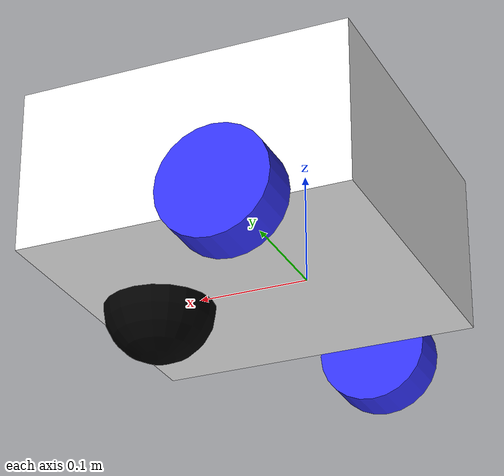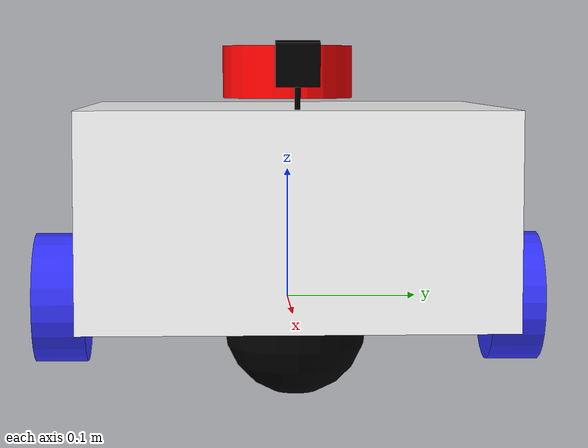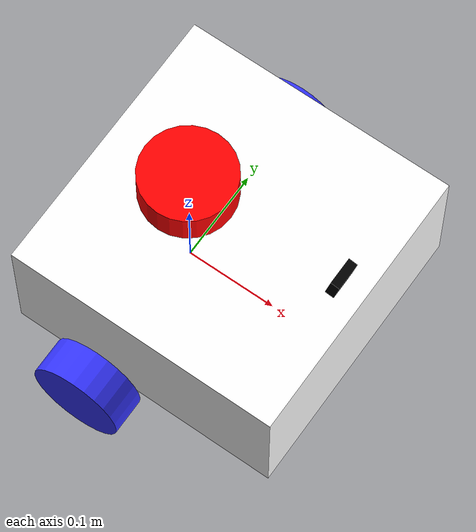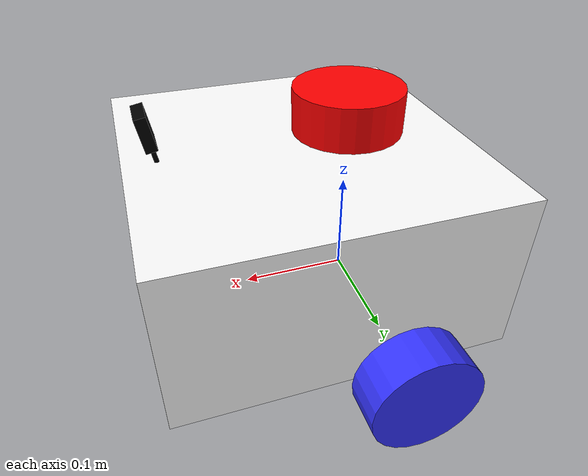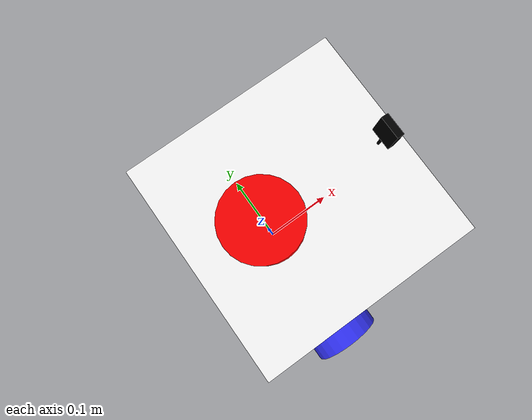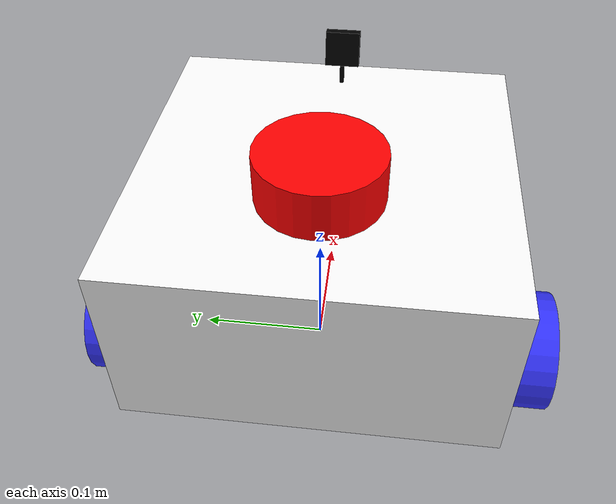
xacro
<?xml version="1.0"?>
<robot xmlns:xacro="http://www.ros.org/wiki/xacro"  name="robot">

    <xacro:include filename="robot_core.xacro" />
    <xacro:include filename="lidar.xacro"/>
    <xacro:include filename="camera.xacro"/>
    <xacro:include filename="ros2_control.xacro"/>

</robot>

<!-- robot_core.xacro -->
<robot xmlns:xacro="http://www.ros.org/wiki/xacro" name="robot">

    <xacro:include filename="inertial_macros.xacro"/>

    <material name="white">
        <color rgba="1 1 1 1" />
    </material>

    <material name="orange">
        <color rgba="1 0.3 0.1 1"/>
    </material>

    <material name="blue">
        <color rgba="0.2 0.2 1 1"/>
    </material>

    <material name="black">
        <color rgba="0 0 0 1"/>
    </material>

    <material name="red">
        <color rgba="1 0 0 1"/>
    </material>

    <!-- BASE LINK -->

    <link name="base_link">

    </link>

    <!-- CHASSIS LINK -->

    <joint name="chassis_joint" type="fixed">
        <parent link="base_link"/>
        <child link="chassis"/>
        <origin xyz="-0.1 0 0"/>
    </joint>

    <link name="chassis">
        <visual>
            <origin xyz="0.15 0 0.075"/>
            <geometry>
                <box size="0.3 0.3 0.15"/>
            </geometry>
            <material name="white"/>
        </visual>
        <collision>
            <origin xyz="0.15 0 0.075"/>
            <geometry>
                <box size="0.3 0.3 0.15"/>
            </geometry>
        </collision>
        <xacro:inertial_box mass="0.5" x="0.3" y="0.3" z="0.15">
            <origin xyz="0.15 0 0.075" rpy="0 0 0"/>
        </xacro:inertial_box>
    </link>

    <gazebo reference="chassis">
        <material>
            Gazebo/White
        </material>
    </gazebo>

    <!-- LEFT WHEEL LINK -->

    <joint name="left_wheel_joint" type="continuous">
        <parent link="base_link"/>
        <child link="left_wheel"/>
        <origin xyz="0 0.175 0" rpy="-${pi/2} 0 0" />
        <axis xyz="0 0 1"/>
    </joint>

    <link name="left_wheel">
        <visual>
            <geometry>
                <cylinder radius="0.05" length="0.04"/>
            </geometry>
            <material name="blue"/>
        </visual>
        <collision>
            <geometry>
                <cylinder radius="0.05" length="0.04"/>
            </geometry>
        </collision>
        <xacro:inertial_cylinder mass="0.1" length="0.04" radius="0.05">
            <origin xyz="0 0 0" rpy="0 0 0"/>
        </xacro:inertial_cylinder>
    </link>

    <gazebo reference="left_wheel">
        <material>
            Gazebo/Blue
        </material>
    </gazebo>

    <!-- RIGHT WHEEL LINK -->

    <joint name="right_wheel_joint" type="continuous">
        <parent link="base_link"/>
        <child link="right_wheel"/>
        <origin xyz="0 -0.175 0" rpy="${pi/2} 0 0" />
        <axis xyz="0 0 -1"/>
    </joint>

    <link name="right_wheel">
        <visual>
            <geometry>
                <cylinder radius="0.05" length="0.04"/>
            </geometry>
            <material name="blue"/>
        </visual>
        <collision>
            <geometry>
                <cylinder radius="0.05" length="0.04"/>
            </geometry>
        </collision>
        <xacro:inertial_cylinder mass="0.1" length="0.04" radius="0.05">
            <origin xyz="0 0 0" rpy="0 0 0"/>
        </xacro:inertial_cylinder>
    </link>

    <gazebo reference="right_wheel">
        <material>
            Gazebo/Blue
        </material>
    </gazebo>

    <!-- CASTER WHEEL LINK -->

    <joint name="caster_wheel_joint" type="fixed">
        <parent link="chassis"/>
        <child link="caster_wheel"/>
        <origin xyz="0.24 0 0"/>
    </joint>

    <link name="caster_wheel">
        <visual>
            <geometry>
                <sphere radius="0.05"/>
            </geometry>
            <material name="black"/>
        </visual>
        <collision>
            <geometry>
                <sphere radius="0.05"/>
            </geometry>
        </collision>
        <xacro:inertial_sphere mass="0.1" radius="0.05">
            <origin xyz="0 0 0" rpy="0 0 0"/>
        </xacro:inertial_sphere>
    </link>

    <gazebo reference="caster_wheel">
        <material>
            Gazebo/Black
        </material>
        <mu1 value="0.001"/>
        <mu2 value="0.001"/>
    </gazebo>

</robot>

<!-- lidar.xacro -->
<robot xmlns:xacro="http://www.ros.org/wiki/xacro" name="robot">

    <joint name="laser_joint" type="fixed">
        <parent link="chassis"/>
        <child link="laser_frame"/>
        <origin xyz="0.1 0 0.175" rpy="0 0 0"/>
    </joint>

    <link name="laser_frame">
        <visual>
            <geometry>
                <cylinder radius="0.05" length="0.04"/>
            </geometry>
            <material name="red"/>
        </visual>
        <collision>
            <geometry>
                <cylinder radius="0.05" length="0.04"/>
            </geometry>
        </collision>
        <xacro:inertial_cylinder mass="0.1" length="0.04" radius="0.05">
            <origin xyz="0 0 0" rpy="0 0 0"/>
        </xacro:inertial_cylinder>
    </link>

    <!--simulate a sensor in Gazebo-->
    <gazebo reference="laser_frame">
        <material>Gazebo/Black</material>

        <sensor name="laser" type="ray">
            <pose> 0 0 0 0 0 0 </pose>
            <visualize>true</visualize>
            <update_rate>10</update_rate>   <!--10Hz-->
            <ray>       <!--(ray):Parameters for  simulated "lidar"-->
                <scan>
                    <horizontal>
                        <samples>360</samples>
                        <min_angle>-3.14</min_angle>
                        <max_angle>3.14</max_angle>
                    </horizontal>
                </scan>
                <range>
                    <min>0.3</min>
                    <max>12</max>
                </range>
            </ray>
            <!-- The "libgazebo_ros_ray_sensor" plugin is used for publishing ROS topics from a simulated ray sensor-->
            <plugin name="laser_controller" filename="libgazebo_ros_ray_sensor.so">     <!--(plugin): How to get data in and out of Gazebo to other sofware-->
                <ros>
                    <argument>~/out:=scan</argument>    <!--publish the data as a LaserScan message on the /scan topic, in the laser_frame TF frame-->
                </ros>
                <output_type>sensor_msgs/LaserScan</output_type>
                <frame_name>laser_frame</frame_name>
            </plugin>
        </sensor>
    </gazebo>

</robot>

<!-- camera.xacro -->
<!--RGB-->
<!--openCV: BGR-->
<!--Images Coordinate: "x:L to R" "y:TOP to BOTTOM" right-hand rule-->
<!--Node -> Topic: /image_raw("sensor_msgs/lmage" or "sensor_msgs/compressedlmage") -> Algorithms&Stuff-->
<!--The unprocessed Image topic published directly by a camera driver is often called /image_raw-->
<!--The processed call /image_raw/compressed-->
<!--ROS provides the image_transport tools can handle all the compression/decompressions automatically -->
<!--sensor_msgs/CameraInfo provides more camera data.  This Topic will call : /camera_info-->
<!-- image_proc/image_pipeline packages to assist in converting the /image_raw topic into more useful data-->

<?xml version="1.0"?>
<robot xmlns:xacro="http://www.ros.org/wiki/xacro" >

    <joint name="camera_joint" type="fixed">
        <parent link="chassis"/>
        <child link="camera_link"/>
        <origin xyz="0.276 0 0.181" rpy="0 0.18 0"/>
    </joint>

    <link name="camera_link">
        <visual>
            <geometry>
                <box size="0.010 0.03 0.03"/>
            </geometry>
            <material name="black"/>
        </visual>
        <visual>
            <origin xyz="0 0 -0.05"/>
            <geometry>
                <cylinder radius="0.002" length="0.1"/>
            </geometry>
            <material name="black"/>
        </visual>
    </link>

<!--add the “dummy” link called camera_link_optical to account for the different coordinate standards-->
    <joint name="camera_optical_joint" type="fixed">
        <parent link="camera_link"/>    <!--camer_link -> camera_optical_joint-->
        <child link="camera_link_optical"/>
        <origin xyz="0 0 0" rpy="${-pi/2} 0 ${-pi/2}"/>
    </joint>

    <link name="camera_link_optical"></link>

    <!--simulate a sensor in Gazebo-->
    <gazebo reference="camera_link">
        <material>Gazebo/Black</material>

        <sensor name="camera" type="camera">
            <pose> 0 0 0 0 0 0 </pose>
            <visualize>true</visualize>
            <update_rate>10</update_rate>   <!--10Hz-->
            <camera>
                <horizontal_fov>1.089</horizontal_fov>
                <image>
                    <format>R16G16B16</format>
                    <width>640</width>
                    <height>480</height>
                </image>
                <clip>
                    <near>0.05</near>
                    <far>8.0</far>
                </clip>
            </camera>
            <!-- get data in and out of Gazebo using the libgazebo_ros_camera.so plugin-->
            <plugin name="camera_controller" filename="libgazebo_ros_camera.so">
                <frame_name>camera_link_optical</frame_name>
            </plugin>
        </sensor>
    </gazebo>

</robot>
